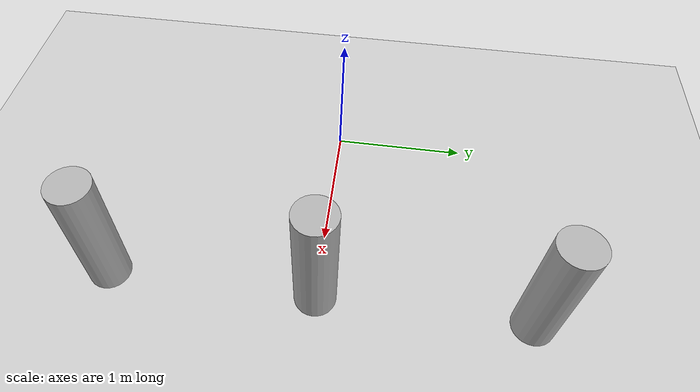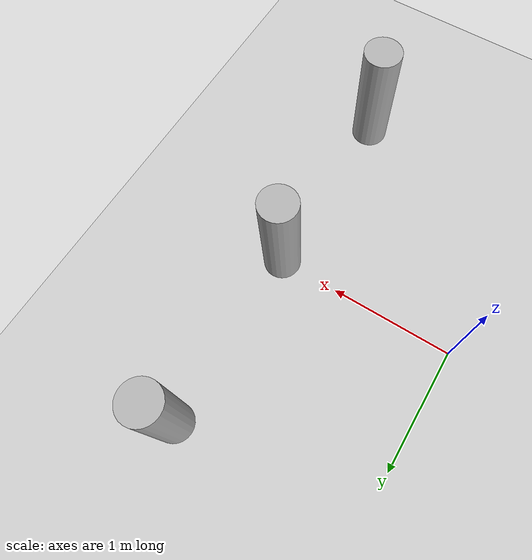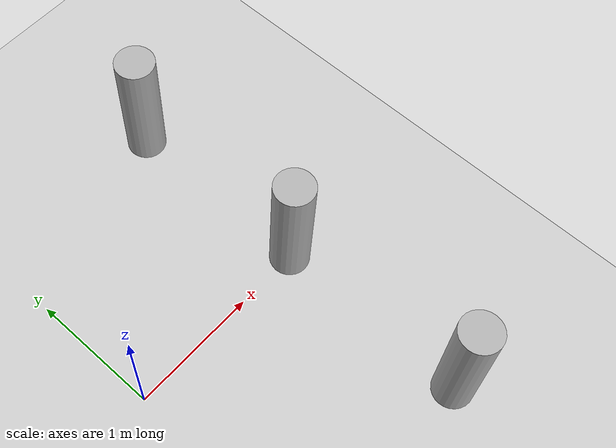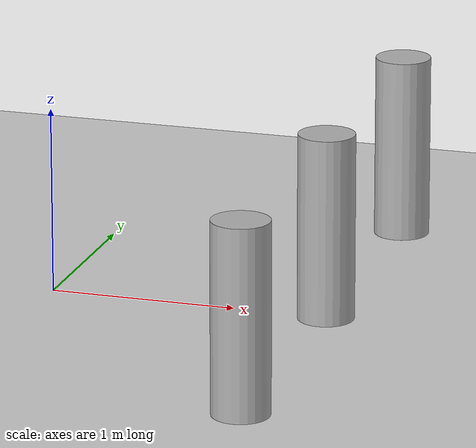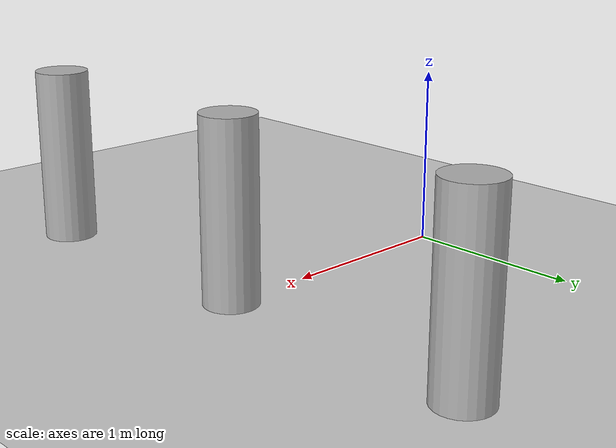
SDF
<?xml version="1.0" ?>
<sdf version="1.6">
  <world name="empty">
    <physics name="1ms" type="ignored">
      <max_step_size>0.001</max_step_size>
      <real_time_factor>1.0</real_time_factor>
    </physics>

    <plugin filename="ignition-gazebo-contact-system" name="gz::sim::systems::Contact" />
    <plugin filename="ignition-gazebo-imu-system" name="gz::sim::systems::Imu" />
    <plugin filename="ignition-gazebo-physics-system" name="gz::sim::systems::Physics" />
    <plugin filename="ignition-gazebo-scene-broadcaster-system"
      name="gz::sim::systems::SceneBroadcaster" />
    <plugin filename="ignition-gazebo-sensors-system" name="gz::sim::systems::Sensors" />
    <plugin filename="ignition-gazebo-user-commands-system" name="gz::sim::systems::UserCommands" />

    <spherical_coordinates>
      <surface_model>EARTH_WGS84</surface_model>
      <world_frame_orientation>ENU</world_frame_orientation>
      <latitude_deg>50.088384</latitude_deg>
      <longitude_deg>19.939128</longitude_deg>
      <elevation>0</elevation>
      <heading_deg>0</heading_deg>
    </spherical_coordinates>

    <light type="directional" name="sun">
      <cast_shadows>true</cast_shadows>
      <pose>0 0 10 0 0 0</pose>
      <diffuse>0.8 0.8 0.8 1</diffuse>
      <specular>0.2 0.2 0.2 1</specular>
      <attenuation>
        <range>1000</range>
        <constant>0.9</constant>
        <linear>0.01</linear>
        <quadratic>0.001</quadratic>
      </attenuation>
      <direction>-0.5 0.1 -0.9</direction>
    </light>

    <model name="ground_plane">
      <static>true</static>
      <link name="link">
        <collision name="collision">
          <geometry>
            <plane>
              <normal>0 0 1</normal>
              <size>100 100</size>
            </plane>
          </geometry>
        </collision>
        <visual name="visual">
          <geometry>
            <plane>
              <normal>0 0 1</normal>
              <size>100 100</size>
            </plane>
          </geometry>
          <material>
            <ambient>0.8 0.8 0.8 1</ambient>
            <diffuse>0.8 0.8 0.8 1</diffuse>
            <specular>0.8 0.8 0.8 1</specular>
          </material>
        </visual>
      </link>
    </model>

    <!-- New cylinder model -->
    <model name="cylinder_1">
      <pose>1.5 0 0.5 0 0 0</pose> <!-- x y z roll pitch yaw -->
      <link name="link">
        <collision name="collision">
          <geometry>
            <cylinder>
              <radius>0.15</radius>
              <length>1.0</length>
            </cylinder>
          </geometry>
        </collision>
        <visual name="visual">
          <geometry>
            <cylinder>
              <radius>0.15</radius>
              <length>1.0</length>
            </cylinder>
          </geometry>
          <material>
            <ambient>0.5 0.5 0.5 1</ambient>
            <diffuse>0.7 0.7 0.7 1</diffuse>
            <specular>0.9 0.9 0.9 1</specular>
          </material>
        </visual>
      </link>
    </model>

    <model name="cylinder_2">
      <pose>1.5 -1.5 0.5 0 0 0</pose> <!-- x y z roll pitch yaw -->
      <link name="link">
        <collision name="collision">
          <geometry>
            <cylinder>
              <radius>0.15</radius>
              <length>1.0</length>
            </cylinder>
          </geometry>
        </collision>
        <visual name="visual">
          <geometry>
            <cylinder>
              <radius>0.15</radius>
              <length>1.0</length>
            </cylinder>
          </geometry>
          <material>
            <ambient>0.5 0.5 0.5 1</ambient>
            <diffuse>0.7 0.7 0.7 1</diffuse>
            <specular>0.9 0.9 0.9 1</specular>
          </material>
        </visual>
      </link>
    </model>

    <model name="cylinder_3">
      <pose>1.5 1.5 0.5 0 0 0</pose> <!-- x y z roll pitch yaw -->
      <link name="link">
        <collision name="collision">
          <geometry>
            <cylinder>
              <radius>0.15</radius>
              <length>1.0</length>
            </cylinder>
          </geometry>
        </collision>
        <visual name="visual">
          <geometry>
            <cylinder>
              <radius>0.15</radius>
              <length>1.0</length>
            </cylinder>
          </geometry>
          <material>
            <ambient>0.5 0.5 0.5 1</ambient>
            <diffuse>0.7 0.7 0.7 1</diffuse>
            <specular>0.9 0.9 0.9 1</specular>
          </material>
        </visual>
      </link>
    </model>
  </world>
</sdf>
